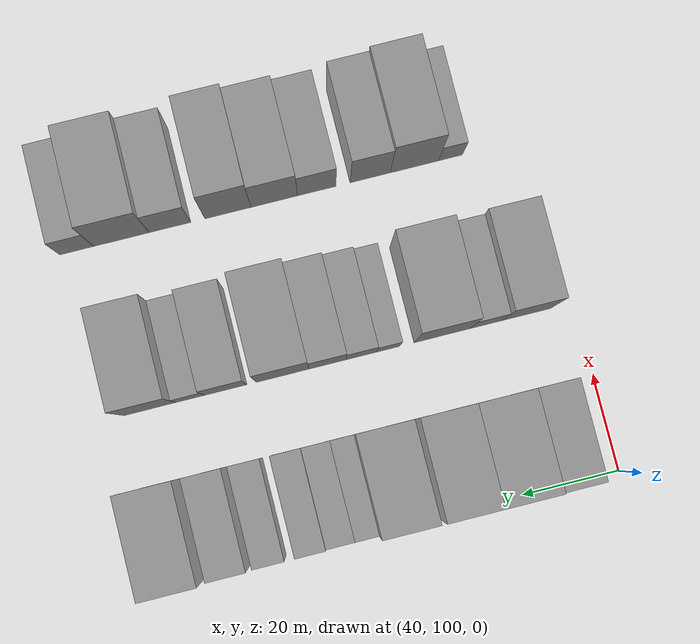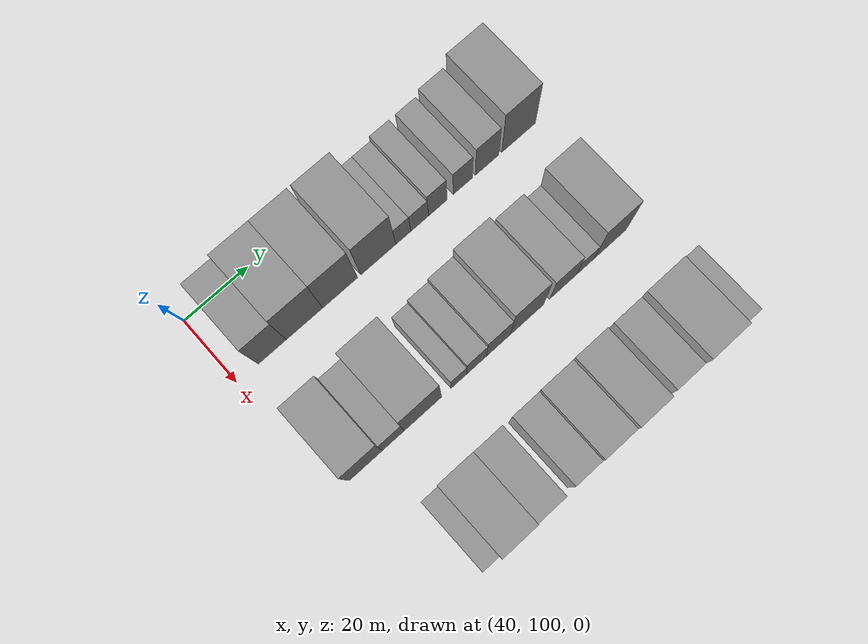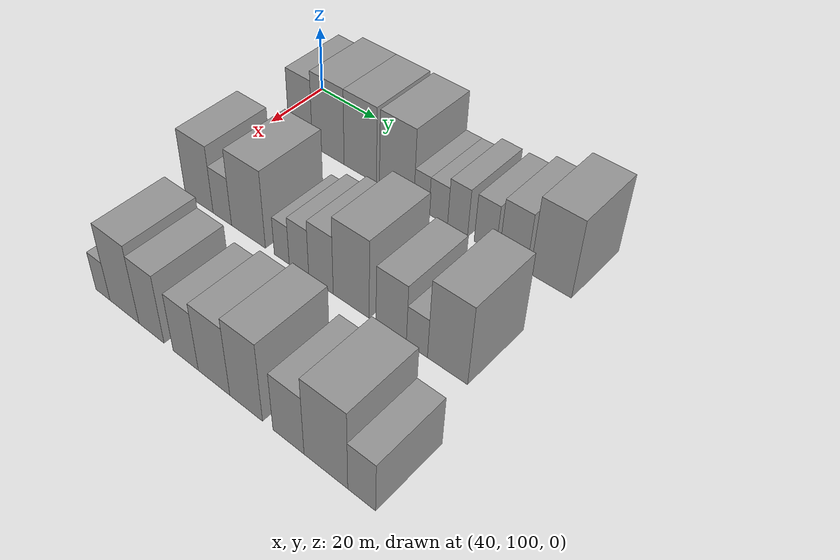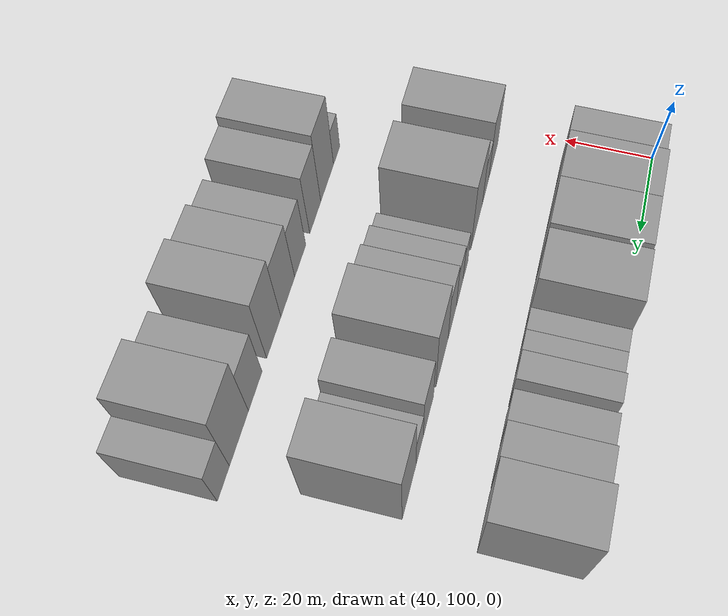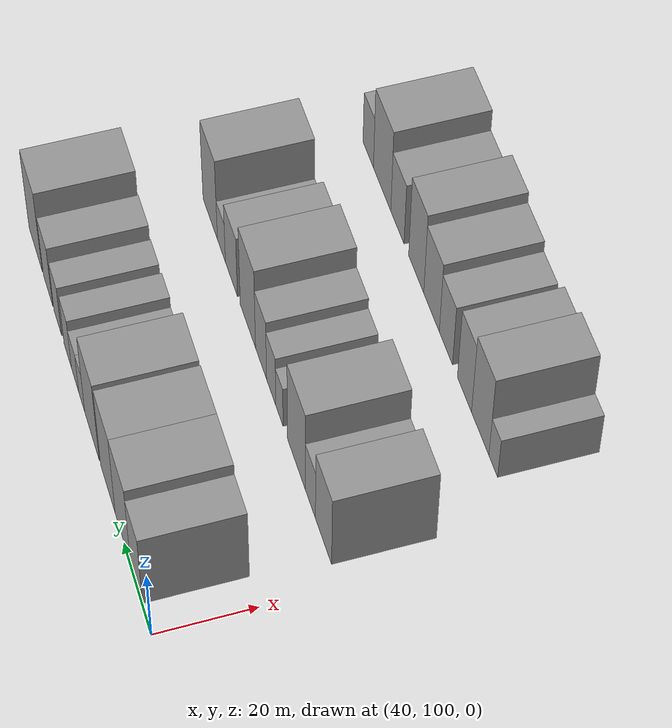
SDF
<sdf version="1.6">
 <world name="default">
  <model name="building_50">
   <static>1</static>
   <pose>50.0000 110.9926 0 0.000000 0.000000 0.000000</pose>
   <link name="link">
    <pose>0 0 10.50 0 0 0</pose>
    <collision name="collision"><geometry><box><size>20.0000 8.6714 21.0000</size></box></geometry></collision>
    <visual name="visual">
     <cast_shadows>0</cast_shadows>
     <geometry><box><size>20.0000 8.6714 21.0000</size></box></geometry>
     <material>
      <script>
       <uri>model://grey_wall/materials/scripts</uri>
       <uri>model://grey_wall/materials/textures</uri>
       <name>vrc/grey_wall</name>
      </script>
     </material>
    </visual>
   </link>
  </model>
  <model name="building_51">
   <static>1</static>
   <pose>50.0000 121.0256 0 0.000000 0.000000 0.000000</pose>
   <link name="link">
    <pose>0 0 12.00 0 0 0</pose>
    <collision name="collision"><geometry><box><size>20.0000 11.3945 24.0000</size></box></geometry></collision>
    <visual name="visual">
     <cast_shadows>0</cast_shadows>
     <geometry><box><size>20.0000 11.3945 24.0000</size></box></geometry>
     <material>
      <script>
       <uri>model://grey_wall/materials/scripts</uri>
       <uri>model://grey_wall/materials/textures</uri>
       <name>vrc/grey_wall</name>
      </script>
     </material>
    </visual>
   </link>
  </model>
  <model name="building_52">
   <static>1</static>
   <pose>50.0000 132.2660 0 0.000000 0.000000 0.000000</pose>
   <link name="link">
    <pose>0 0 12.00 0 0 0</pose>
    <collision name="collision"><geometry><box><size>20.0000 11.0864 24.0000</size></box></geometry></collision>
    <visual name="visual">
     <cast_shadows>0</cast_shadows>
     <geometry><box><size>20.0000 11.0864 24.0000</size></box></geometry>
     <material>
      <script>
       <uri>model://grey_wall/materials/scripts</uri>
       <uri>model://grey_wall/materials/textures</uri>
       <name>vrc/grey_wall</name>
      </script>
     </material>
    </visual>
   </link>
  </model>
  <model name="building_53">
   <static>1</static>
   <pose>50.0000 144.4724 0 0.000000 0.000000 0.000000</pose>
   <link name="link">
    <pose>0 0 12.00 0 0 0</pose>
    <collision name="collision"><geometry><box><size>20.0000 11.3264 24.0000</size></box></geometry></collision>
    <visual name="visual">
     <cast_shadows>0</cast_shadows>
     <geometry><box><size>20.0000 11.3264 24.0000</size></box></geometry>
     <material>
      <script>
       <uri>model://grey_wall/materials/scripts</uri>
       <uri>model://grey_wall/materials/textures</uri>
       <name>vrc/grey_wall</name>
      </script>
     </material>
    </visual>
   </link>
  </model>
  <model name="building_54">
   <static>1</static>
   <pose>50.0000 152.5741 0 0.000000 0.000000 0.000000</pose>
   <link name="link">
    <pose>0 0 6.00 0 0 0</pose>
    <collision name="collision"><geometry><box><size>20.0000 4.8770 12.0000</size></box></geometry></collision>
    <visual name="visual">
     <cast_shadows>0</cast_shadows>
     <geometry><box><size>20.0000 4.8770 12.0000</size></box></geometry>
     <material>
      <script>
       <uri>model://grey_wall/materials/scripts</uri>
       <uri>model://grey_wall/materials/textures</uri>
       <name>vrc/grey_wall</name>
      </script>
     </material>
    </visual>
   </link>
  </model>
  <model name="building_55">
   <static>1</static>
   <pose>50.0000 157.9040 0 0.000000 0.000000 0.000000</pose>
   <link name="link">
    <pose>0 0 6.00 0 0 0</pose>
    <collision name="collision"><geometry><box><size>20.0000 5.7828 12.0000</size></box></geometry></collision>
    <visual name="visual">
     <cast_shadows>0</cast_shadows>
     <geometry><box><size>20.0000 5.7828 12.0000</size></box></geometry>
     <material>
      <script>
       <uri>model://grey_wall/materials/scripts</uri>
       <uri>model://grey_wall/materials/textures</uri>
       <name>vrc/grey_wall</name>
      </script>
     </material>
    </visual>
   </link>
  </model>
  <model name="building_56">
   <static>1</static>
   <pose>50.0000 163.8397 0 0.000000 0.000000 0.000000</pose>
   <link name="link">
    <pose>0 0 7.50 0 0 0</pose>
    <collision name="collision"><geometry><box><size>20.0000 6.0886 15.0000</size></box></geometry></collision>
    <visual name="visual">
     <cast_shadows>0</cast_shadows>
     <geometry><box><size>20.0000 6.0886 15.0000</size></box></geometry>
     <material>
      <script>
       <uri>model://grey_wall/materials/scripts</uri>
       <uri>model://grey_wall/materials/textures</uri>
       <name>vrc/grey_wall</name>
      </script>
     </material>
    </visual>
   </link>
  </model>
  <model name="building_57">
   <static>1</static>
   <pose>50.0000 172.0617 0 0.000000 0.000000 0.000000</pose>
   <link name="link">
    <pose>0 0 7.50 0 0 0</pose>
    <collision name="collision"><geometry><box><size>20.0000 6.3553 15.0000</size></box></geometry></collision>
    <visual name="visual">
     <cast_shadows>0</cast_shadows>
     <geometry><box><size>20.0000 6.3553 15.0000</size></box></geometry>
     <material>
      <script>
       <uri>model://grey_wall/materials/scripts</uri>
       <uri>model://grey_wall/materials/textures</uri>
       <name>vrc/grey_wall</name>
      </script>
     </material>
    </visual>
   </link>
  </model>
  <model name="building_58">
   <static>1</static>
   <pose>50.0000 180.1645 0 0.000000 0.000000 0.000000</pose>
   <link name="link">
    <pose>0 0 9.00 0 0 0</pose>
    <collision name="collision"><geometry><box><size>20.0000 7.8503 18.0000</size></box></geometry></collision>
    <visual name="visual">
     <cast_shadows>0</cast_shadows>
     <geometry><box><size>20.0000 7.8503 18.0000</size></box></geometry>
     <material>
      <script>
       <uri>model://grey_wall/materials/scripts</uri>
       <uri>model://grey_wall/materials/textures</uri>
       <name>vrc/grey_wall</name>
      </script>
     </material>
    </visual>
   </link>
  </model>
  <model name="building_59">
   <static>1</static>
   <pose>50.0000 190.7921 0 0.000000 0.000000 0.000000</pose>
   <link name="link">
    <pose>0 0 12.00 0 0 0</pose>
    <collision name="collision"><geometry><box><size>20.0000 11.4048 24.0000</size></box></geometry></collision>
    <visual name="visual">
     <cast_shadows>0</cast_shadows>
     <geometry><box><size>20.0000 11.4048 24.0000</size></box></geometry>
     <material>
      <script>
       <uri>model://grey_wall/materials/scripts</uri>
       <uri>model://grey_wall/materials/textures</uri>
       <name>vrc/grey_wall</name>
      </script>
     </material>
    </visual>
   </link>
  </model>
  <model name="building_119">
   <static>1</static>
   <pose>85.0000 110.0395 0 0.000000 0.000000 0.000000</pose>
   <link name="link">
    <pose>0 0 10.50 0 0 0</pose>
    <collision name="collision"><geometry><box><size>20.0000 10.2903 21.0000</size></box></geometry></collision>
    <visual name="visual">
     <cast_shadows>0</cast_shadows>
     <geometry><box><size>20.0000 10.2903 21.0000</size></box></geometry>
     <material>
      <script>
       <uri>model://grey_wall/materials/scripts</uri>
       <uri>model://grey_wall/materials/textures</uri>
       <name>vrc/grey_wall</name>
      </script>
     </material>
    </visual>
   </link>
  </model>
  <model name="building_120">
   <static>1</static>
   <pose>85.0000 118.4957 0 0.000000 0.000000 0.000000</pose>
   <link name="link">
    <pose>0 0 7.50 0 0 0</pose>
    <collision name="collision"><geometry><box><size>20.0000 6.6221 15.0000</size></box></geometry></collision>
    <visual name="visual">
     <cast_shadows>0</cast_shadows>
     <geometry><box><size>20.0000 6.6221 15.0000</size></box></geometry>
     <material>
      <script>
       <uri>model://grey_wall/materials/scripts</uri>
       <uri>model://grey_wall/materials/textures</uri>
       <name>vrc/grey_wall</name>
      </script>
     </material>
    </visual>
   </link>
  </model>
  <model name="building_121">
   <static>1</static>
   <pose>85.0000 127.6762 0 0.000000 0.000000 0.000000</pose>
   <link name="link">
    <pose>0 0 12.00 0 0 0</pose>
    <collision name="collision"><geometry><box><size>20.0000 11.7389 24.0000</size></box></geometry></collision>
    <visual name="visual">
     <cast_shadows>0</cast_shadows>
     <geometry><box><size>20.0000 11.7389 24.0000</size></box></geometry>
     <material>
      <script>
       <uri>model://grey_wall/materials/scripts</uri>
       <uri>model://grey_wall/materials/textures</uri>
       <name>vrc/grey_wall</name>
      </script>
     </material>
    </visual>
   </link>
  </model>
  <model name="building_122">
   <static>1</static>
   <pose>85.0000 139.0218 0 0.000000 0.000000 0.000000</pose>
   <link name="link">
    <pose>0 0 6.00 0 0 0</pose>
    <collision name="collision"><geometry><box><size>20.0000 4.9524 12.0000</size></box></geometry></collision>
    <visual name="visual">
     <cast_shadows>0</cast_shadows>
     <geometry><box><size>20.0000 4.9524 12.0000</size></box></geometry>
     <material>
      <script>
       <uri>model://grey_wall/materials/scripts</uri>
       <uri>model://grey_wall/materials/textures</uri>
       <name>vrc/grey_wall</name>
      </script>
     </material>
    </visual>
   </link>
  </model>
  <model name="building_123">
   <static>1</static>
   <pose>85.0000 144.6682 0 0.000000 0.000000 0.000000</pose>
   <link name="link">
    <pose>0 0 7.50 0 0 0</pose>
    <collision name="collision"><geometry><box><size>20.0000 6.3404 15.0000</size></box></geometry></collision>
    <visual name="visual">
     <cast_shadows>0</cast_shadows>
     <geometry><box><size>20.0000 6.3404 15.0000</size></box></geometry>
     <material>
      <script>
       <uri>model://grey_wall/materials/scripts</uri>
       <uri>model://grey_wall/materials/textures</uri>
       <name>vrc/grey_wall</name>
      </script>
     </material>
    </visual>
   </link>
  </model>
  <model name="building_124">
   <static>1</static>
   <pose>85.0000 151.6887 0 0.000000 0.000000 0.000000</pose>
   <link name="link">
    <pose>0 0 9.00 0 0 0</pose>
    <collision name="collision"><geometry><box><size>20.0000 7.7005 18.0000</size></box></geometry></collision>
    <visual name="visual">
     <cast_shadows>0</cast_shadows>
     <geometry><box><size>20.0000 7.7005 18.0000</size></box></geometry>
     <material>
      <script>
       <uri>model://grey_wall/materials/scripts</uri>
       <uri>model://grey_wall/materials/textures</uri>
       <name>vrc/grey_wall</name>
      </script>
     </material>
    </visual>
   </link>
  </model>
  <model name="building_125">
   <static>1</static>
   <pose>85.0000 160.9731 0 0.000000 0.000000 0.000000</pose>
   <link name="link">
    <pose>0 0 12.00 0 0 0</pose>
    <collision name="collision"><geometry><box><size>20.0000 10.8684 24.0000</size></box></geometry></collision>
    <visual name="visual">
     <cast_shadows>0</cast_shadows>
     <geometry><box><size>20.0000 10.8684 24.0000</size></box></geometry>
     <material>
      <script>
       <uri>model://grey_wall/materials/scripts</uri>
       <uri>model://grey_wall/materials/textures</uri>
       <name>vrc/grey_wall</name>
      </script>
     </material>
    </visual>
   </link>
  </model>
  <model name="building_126">
   <static>1</static>
   <pose>85.0000 172.7910 0 0.000000 0.000000 0.000000</pose>
   <link name="link">
    <pose>0 0 9.00 0 0 0</pose>
    <collision name="collision"><geometry><box><size>20.0000 8.7673 18.0000</size></box></geometry></collision>
    <visual name="visual">
     <cast_shadows>0</cast_shadows>
     <geometry><box><size>20.0000 8.7673 18.0000</size></box></geometry>
     <material>
      <script>
       <uri>model://grey_wall/materials/scripts</uri>
       <uri>model://grey_wall/materials/textures</uri>
       <name>vrc/grey_wall</name>
      </script>
     </material>
    </visual>
   </link>
  </model>
  <model name="building_127">
   <static>1</static>
   <pose>85.0000 180.1257 0 0.000000 0.000000 0.000000</pose>
   <link name="link">
    <pose>0 0 6.00 0 0 0</pose>
    <collision name="collision"><geometry><box><size>20.0000 5.9022 12.0000</size></box></geometry></collision>
    <visual name="visual">
     <cast_shadows>0</cast_shadows>
     <geometry><box><size>20.0000 5.9022 12.0000</size></box></geometry>
     <material>
      <script>
       <uri>model://grey_wall/materials/scripts</uri>
       <uri>model://grey_wall/materials/textures</uri>
       <name>vrc/grey_wall</name>
      </script>
     </material>
    </visual>
   </link>
  </model>
  <model name="building_128">
   <static>1</static>
   <pose>85.0000 188.4907 0 0.000000 0.000000 0.000000</pose>
   <link name="link">
    <pose>0 0 12.00 0 0 0</pose>
    <collision name="collision"><geometry><box><size>20.0000 10.8279 24.0000</size></box></geometry></collision>
    <visual name="visual">
     <cast_shadows>0</cast_shadows>
     <geometry><box><size>20.0000 10.8279 24.0000</size></box></geometry>
     <material>
      <script>
       <uri>model://grey_wall/materials/scripts</uri>
       <uri>model://grey_wall/materials/textures</uri>
       <name>vrc/grey_wall</name>
      </script>
     </material>
    </visual>
   </link>
  </model>
  <model name="building_205">
   <static>1</static>
   <pose>120.0000 116.8071 0 0.000000 0.000000 0.000000</pose>
   <link name="link">
    <pose>0 0 6.00 0 0 0</pose>
    <collision name="collision"><geometry><box><size>20.0000 5.0966 12.0000</size></box></geometry></collision>
    <visual name="visual">
     <cast_shadows>0</cast_shadows>
     <geometry><box><size>20.0000 5.0966 12.0000</size></box></geometry>
     <material>
      <script>
       <uri>model://grey_wall/materials/scripts</uri>
       <uri>model://grey_wall/materials/textures</uri>
       <name>vrc/grey_wall</name>
      </script>
     </material>
    </visual>
   </link>
  </model>
  <model name="building_206">
   <static>1</static>
   <pose>120.0000 124.4766 0 0.000000 0.000000 0.000000</pose>
   <link name="link">
    <pose>0 0 12.00 0 0 0</pose>
    <collision name="collision"><geometry><box><size>20.0000 10.2423 24.0000</size></box></geometry></collision>
    <visual name="visual">
     <cast_shadows>0</cast_shadows>
     <geometry><box><size>20.0000 10.2423 24.0000</size></box></geometry>
     <material>
      <script>
       <uri>model://grey_wall/materials/scripts</uri>
       <uri>model://grey_wall/materials/textures</uri>
       <name>vrc/grey_wall</name>
      </script>
     </material>
    </visual>
   </link>
  </model>
  <model name="building_207">
   <static>1</static>
   <pose>120.0000 133.8290 0 0.000000 0.000000 0.000000</pose>
   <link name="link">
    <pose>0 0 10.50 0 0 0</pose>
    <collision name="collision"><geometry><box><size>20.0000 8.4626 21.0000</size></box></geometry></collision>
    <visual name="visual">
     <cast_shadows>0</cast_shadows>
     <geometry><box><size>20.0000 8.4626 21.0000</size></box></geometry>
     <material>
      <script>
       <uri>model://grey_wall/materials/scripts</uri>
       <uri>model://grey_wall/materials/textures</uri>
       <name>vrc/grey_wall</name>
      </script>
     </material>
    </visual>
   </link>
  </model>
  <model name="building_208">
   <static>1</static>
   <pose>120.0000 145.1243 0 0.000000 0.000000 0.000000</pose>
   <link name="link">
    <pose>0 0 9.00 0 0 0</pose>
    <collision name="collision"><geometry><box><size>20.0000 8.1281 18.0000</size></box></geometry></collision>
    <visual name="visual">
     <cast_shadows>0</cast_shadows>
     <geometry><box><size>20.0000 8.1281 18.0000</size></box></geometry>
     <material>
      <script>
       <uri>model://grey_wall/materials/scripts</uri>
       <uri>model://grey_wall/materials/textures</uri>
       <name>vrc/grey_wall</name>
      </script>
     </material>
    </visual>
   </link>
  </model>
  <model name="building_209">
   <static>1</static>
   <pose>120.0000 154.0725 0 0.000000 0.000000 0.000000</pose>
   <link name="link">
    <pose>0 0 10.50 0 0 0</pose>
    <collision name="collision"><geometry><box><size>20.0000 9.7681 21.0000</size></box></geometry></collision>
    <visual name="visual">
     <cast_shadows>0</cast_shadows>
     <geometry><box><size>20.0000 9.7681 21.0000</size></box></geometry>
     <material>
      <script>
       <uri>model://grey_wall/materials/scripts</uri>
       <uri>model://grey_wall/materials/textures</uri>
       <name>vrc/grey_wall</name>
      </script>
     </material>
    </visual>
   </link>
  </model>
  <model name="building_210">
   <static>1</static>
   <pose>120.0000 163.7934 0 0.000000 0.000000 0.000000</pose>
   <link name="link">
    <pose>0 0 12.00 0 0 0</pose>
    <collision name="collision"><geometry><box><size>20.0000 9.6738 24.0000</size></box></geometry></collision>
    <visual name="visual">
     <cast_shadows>0</cast_shadows>
     <geometry><box><size>20.0000 9.6738 24.0000</size></box></geometry>
     <material>
      <script>
       <uri>model://grey_wall/materials/scripts</uri>
       <uri>model://grey_wall/materials/textures</uri>
       <name>vrc/grey_wall</name>
      </script>
     </material>
    </visual>
   </link>
  </model>
  <model name="building_211">
   <static>1</static>
   <pose>120.0000 175.9813 0 0.000000 0.000000 0.000000</pose>
   <link name="link">
    <pose>0 0 9.00 0 0 0</pose>
    <collision name="collision"><geometry><box><size>20.0000 8.7020 18.0000</size></box></geometry></collision>
    <visual name="visual">
     <cast_shadows>0</cast_shadows>
     <geometry><box><size>20.0000 8.7020 18.0000</size></box></geometry>
     <material>
      <script>
       <uri>model://grey_wall/materials/scripts</uri>
       <uri>model://grey_wall/materials/textures</uri>
       <name>vrc/grey_wall</name>
      </script>
     </material>
    </visual>
   </link>
  </model>
  <model name="building_212">
   <static>1</static>
   <pose>120.0000 186.1604 0 0.000000 0.000000 0.000000</pose>
   <link name="link">
    <pose>0 0 12.00 0 0 0</pose>
    <collision name="collision"><geometry><box><size>20.0000 11.6561 24.0000</size></box></geometry></collision>
    <visual name="visual">
     <cast_shadows>0</cast_shadows>
     <geometry><box><size>20.0000 11.6561 24.0000</size></box></geometry>
     <material>
      <script>
       <uri>model://grey_wall/materials/scripts</uri>
       <uri>model://grey_wall/materials/textures</uri>
       <name>vrc/grey_wall</name>
      </script>
     </material>
    </visual>
   </link>
  </model>
  <model name="building_213">
   <static>1</static>
   <pose>120.0000 195.5404 0 0.000000 0.000000 0.000000</pose>
   <link name="link">
    <pose>0 0 7.50 0 0 0</pose>
    <collision name="collision"><geometry><box><size>20.0000 7.1040 15.0000</size></box></geometry></collision>
    <visual name="visual">
     <cast_shadows>0</cast_shadows>
     <geometry><box><size>20.0000 7.1040 15.0000</size></box></geometry>
     <material>
      <script>
       <uri>model://grey_wall/materials/scripts</uri>
       <uri>model://grey_wall/materials/textures</uri>
       <name>vrc/grey_wall</name>
      </script>
     </material>
    </visual>
   </link>
  </model>
 </world>
</sdf>
